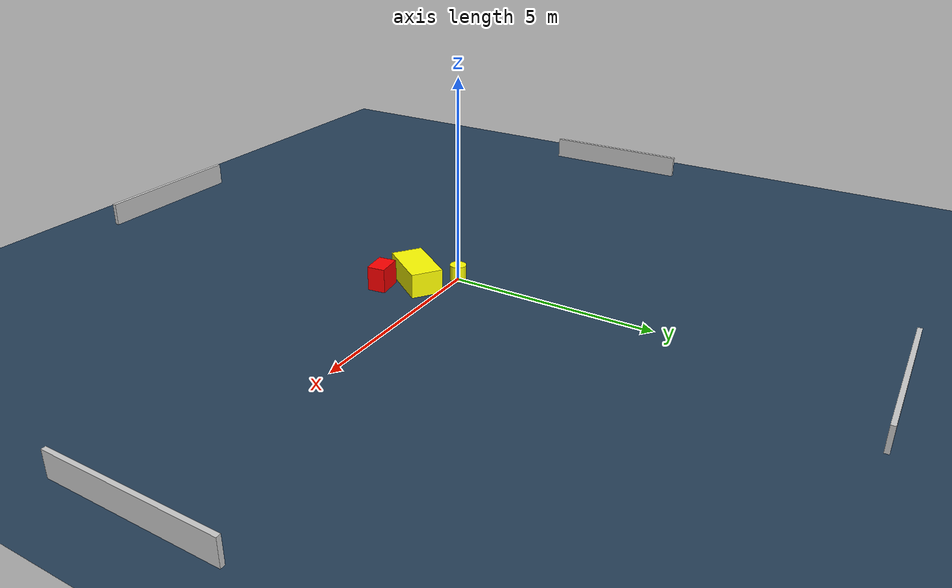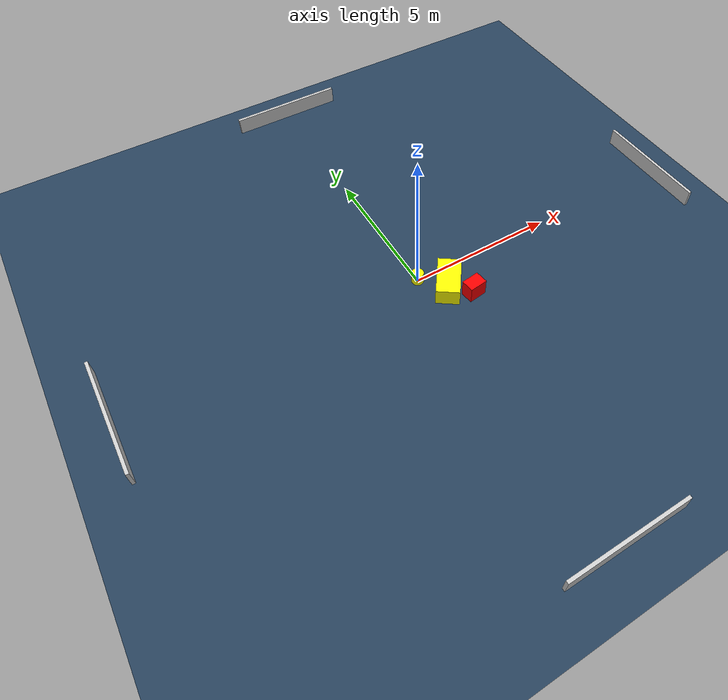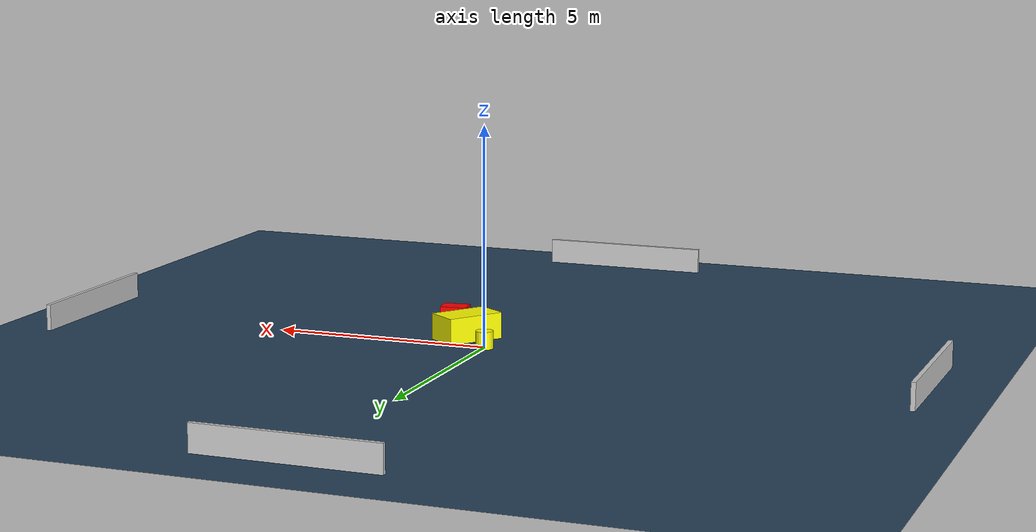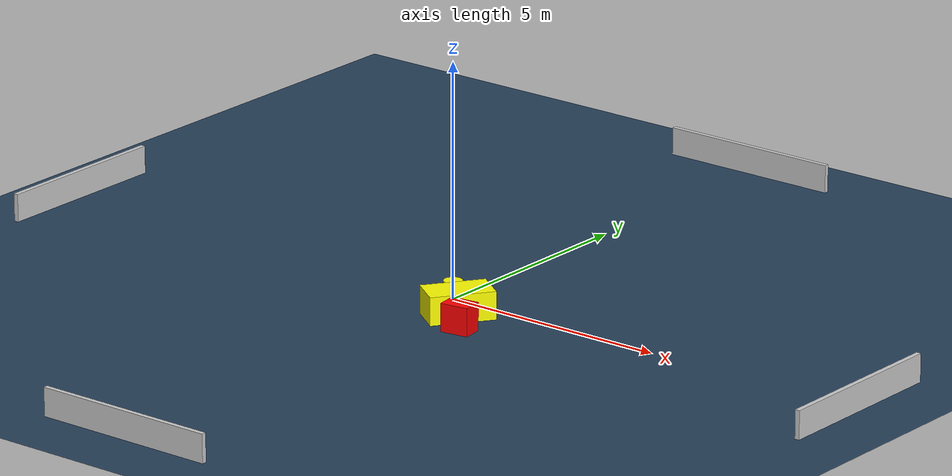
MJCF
<?xml version="1.0" ?>
<mujoco model="generated_environment">
  <option timestep="0.01" integrator="RK4" cone="elliptic"/>
  <default>
    <geom density="1"/>
  </default>
  <asset>
    <texture builtin="gradient" height="3072" name="skybox" rgb1="0.3 0.5 0.7" rgb2="0 0 0" type="skybox" width="512"/>
    <texture builtin="checker" height="300" name="groundplane" rgb1="0.2 0.3 0.4" rgb2="0.1 0.2 0.3" type="2d" width="300"/>
    <material name="groundplane" reflectance="0.2" texrepeat="5 5" texture="groundplane"/>
  </asset>
  <worldbody>
    <light dir="0 0 -1" directional="true" pos="0 0 1.5"/>
    <geom condim="3" friction="0.5 0.005 0.001" material="groundplane" name="floor" pos="0 0 0" size="0 0 0.05" type="plane"/>
    <body name="walls">
      <geom name="wall_1" condim="4" pos="-10.0 0.0 0.3" rgba="0.800000011920929 0.800000011920929 0.800000011920929 1.0" size="0.05 2.0 0.3" type="box"/>
      <geom name="wall_2" condim="4" pos="10.0 0.0 0.3" rgba="0.800000011920929 0.800000011920929 0.800000011920929 1.0" size="0.05 2.0 0.3" type="box"/>
      <geom name="wall_3" condim="4" pos="0.0 -10.0 0.3" rgba="0.800000011920929 0.800000011920929 0.800000011920929 1.0" size="2.0 0.05 0.3" type="box"/>
      <geom name="wall_4" condim="4" pos="0.0 10.0 0.3" rgba="0.800000011920929 0.800000011920929 0.800000011920929 1.0" size="2.0 0.05 0.3" type="box"/>
    </body>
    <body name="robot">
      <joint name="joint_x" type="slide" pos="0 0 0" axis="1 0 0"/>
      <joint name="joint_y" type="slide" pos="0 0 0" axis="0 1 0"/>
      <geom name="robot" type="cylinder" pos="0.0 0.0 0.2" size="0.2 0.2 0.0" mass="5.0" friction="1.0 0.005 0.0001" condim="4" rgba="1.0 1.0 0.0 1.0"/>
    </body>
    <body name="obstacle_1_movable">
      <geom name="obstacle_1_movable" condim="4" pos="0.7140801880466006 -0.7365120045378475 0.3" euler="0 0 54.593763754418084" friction="0.0 0.005 0.001" rgba="1.0 1.0 0.0 1.0" size="0.6870764666094284 0.38629148557695137 0.3" type="box" mass="0.1"/>
      <joint type="free"/>
    </body>
    <body name="obstacle_2_static">
      <geom name="obstacle_2_static" condim="4" pos="1.2628460550723402 -1.3730812288084264 0.3" euler="0 0 187.45178470600163" friction="0.0 0.005 0.001" rgba="1.0 0.0 0.0 1.0" size="0.3048545426523468 0.2199030184537186 0.3" type="box"/>
    </body>
  </worldbody>
  <actuator>
    <motor name="actuator_x" joint="joint_x" gear="1" ctrlrange="-1 1"/>
    <motor name="actuator_y" joint="joint_y" gear="1" ctrlrange="-1 1"/>
  </actuator>
</mujoco>
